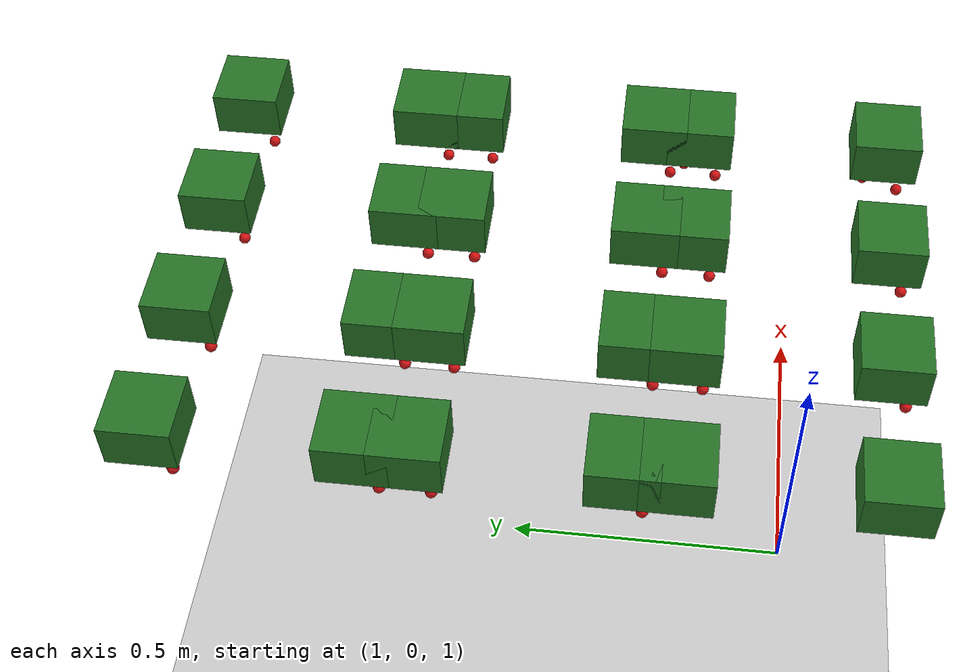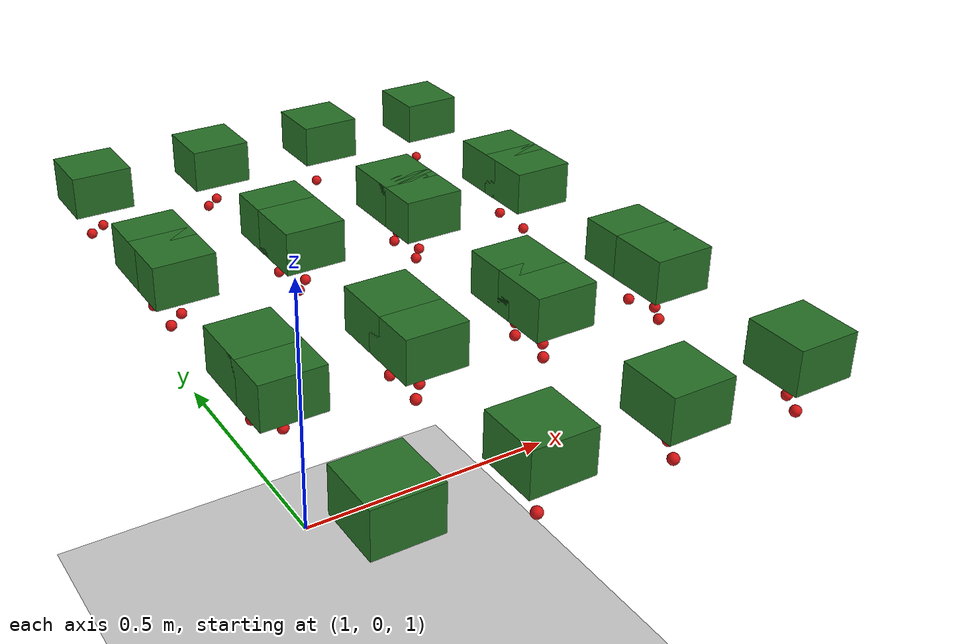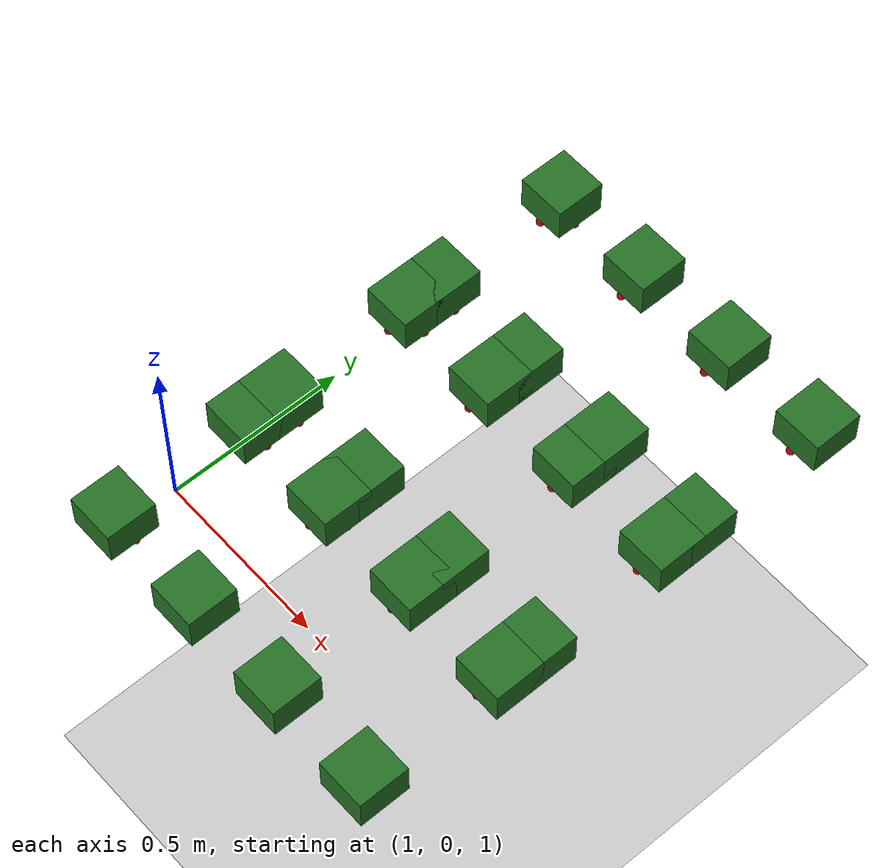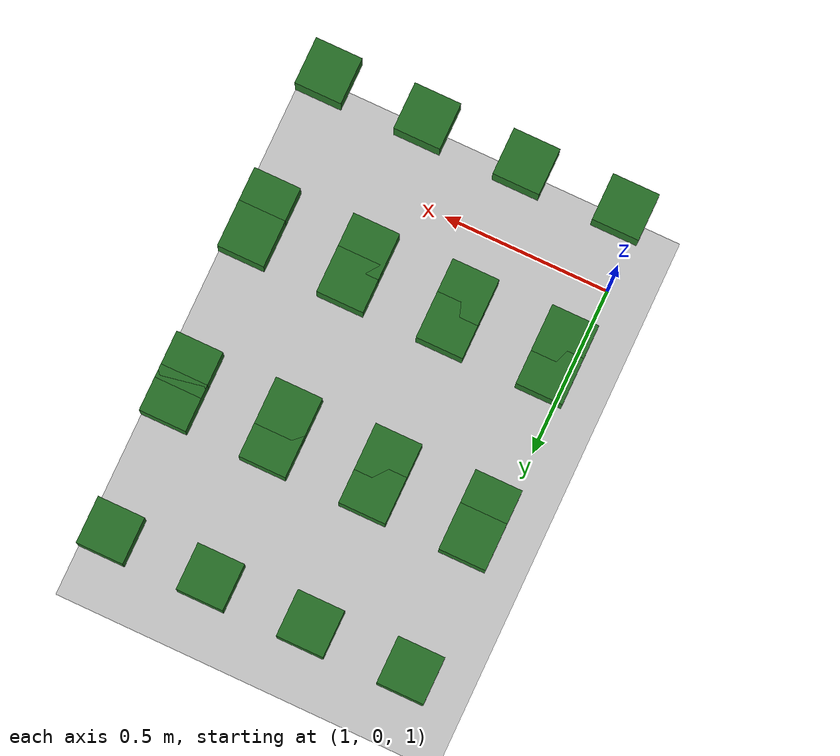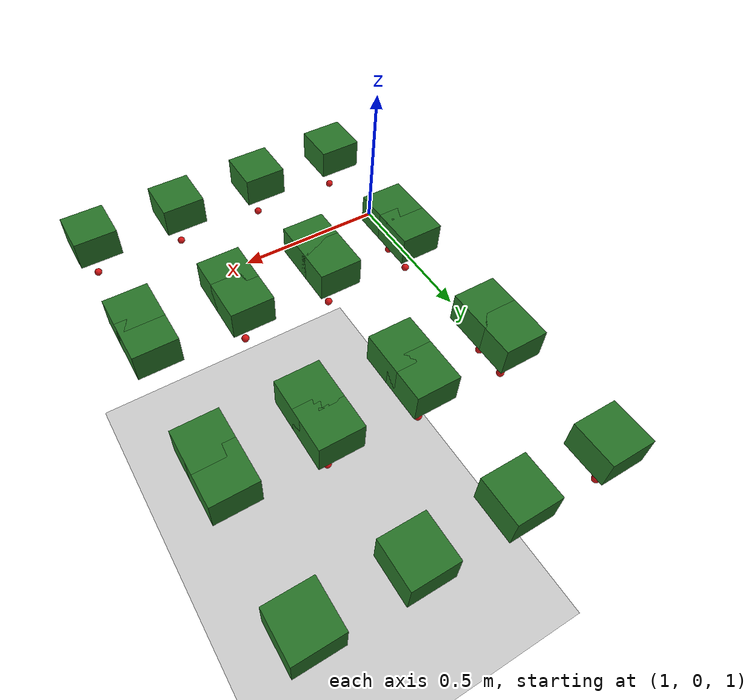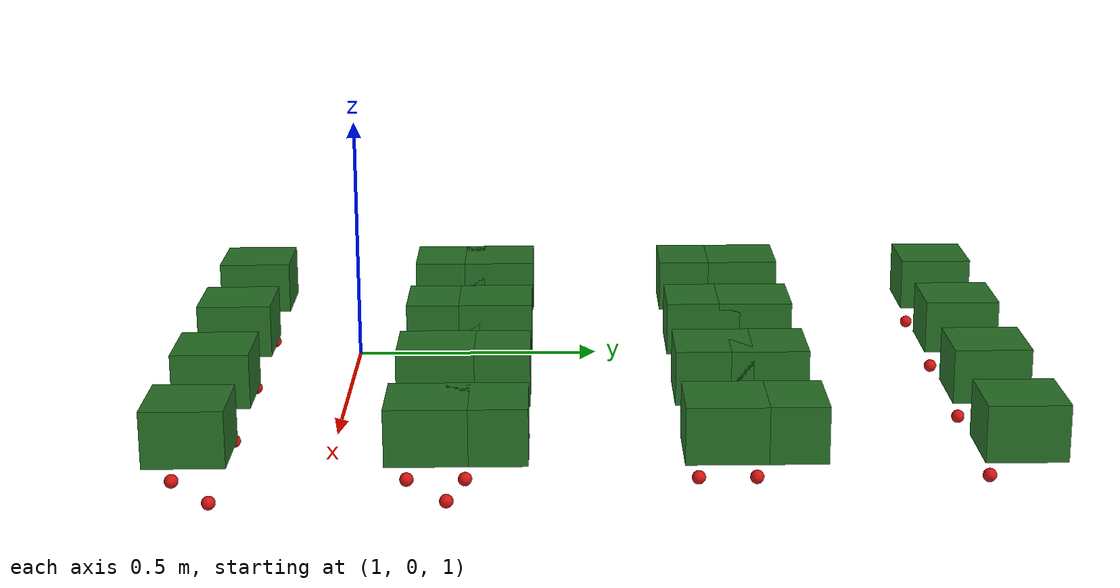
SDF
<sdf version="1.7">
 <world name="irish_polytunnel">
  <include><uri>model://sun</uri></include>
  <include><uri>model://ground_plane</uri></include>
  <model name="row0_L_plant3_foliage">
   <static>true</static>
   <pose>1.050 0.200 1.180 0 0 0</pose>
   <link name="link">
    <visual name="visual">
     <geometry><box><size>0.14 0.14 0.10</size></box></geometry>
     <material><ambient>0.10 0.35 0.10 1</ambient><diffuse>0.15 0.45 0.15 1</diffuse></material>
    </visual>
   </link>
  </model>
  <model name="row0_L_plant3_berry_1">
   <static>true</static>
   <pose>1.070 0.230 1.050 0 0 0</pose>
   <link name="link">
    <visual name="visual">
     <geometry><sphere><radius>0.012</radius></sphere></geometry>
     <material><ambient>0.75 0.05 0.05 1</ambient><diffuse>0.85 0.08 0.08 1</diffuse></material>
    </visual>
   </link>
  </model>
  <model name="row0_L_plant4_foliage">
   <static>true</static>
   <pose>1.350 0.200 1.180 0 0 0</pose>
   <link name="link">
    <visual name="visual">
     <geometry><box><size>0.14 0.14 0.10</size></box></geometry>
     <material><ambient>0.10 0.35 0.10 1</ambient><diffuse>0.15 0.45 0.15 1</diffuse></material>
    </visual>
   </link>
  </model>
  <model name="row0_L_plant4_berry_0">
   <static>true</static>
   <pose>1.320 0.160 1.070 0 0 0</pose>
   <link name="link">
    <visual name="visual">
     <geometry><sphere><radius>0.012</radius></sphere></geometry>
     <material><ambient>0.75 0.05 0.05 1</ambient><diffuse>0.85 0.08 0.08 1</diffuse></material>
    </visual>
   </link>
  </model>
  <model name="row0_L_plant4_berry_1">
   <static>true</static>
   <pose>1.370 0.230 1.050 0 0 0</pose>
   <link name="link">
    <visual name="visual">
     <geometry><sphere><radius>0.012</radius></sphere></geometry>
     <material><ambient>0.75 0.05 0.05 1</ambient><diffuse>0.85 0.08 0.08 1</diffuse></material>
    </visual>
   </link>
  </model>
  <model name="row0_L_plant5_foliage">
   <static>true</static>
   <pose>1.650 0.200 1.180 0 0 0</pose>
   <link name="link">
    <visual name="visual">
     <geometry><box><size>0.14 0.14 0.10</size></box></geometry>
     <material><ambient>0.10 0.35 0.10 1</ambient><diffuse>0.15 0.45 0.15 1</diffuse></material>
    </visual>
   </link>
  </model>
  <model name="row0_L_plant5_berry_0">
   <static>true</static>
   <pose>1.620 0.160 1.070 0 0 0</pose>
   <link name="link">
    <visual name="visual">
     <geometry><sphere><radius>0.012</radius></sphere></geometry>
     <material><ambient>0.75 0.05 0.05 1</ambient><diffuse>0.85 0.08 0.08 1</diffuse></material>
    </visual>
   </link>
  </model>
  <model name="row0_L_plant5_berry_1">
   <static>true</static>
   <pose>1.670 0.230 1.050 0 0 0</pose>
   <link name="link">
    <visual name="visual">
     <geometry><sphere><radius>0.012</radius></sphere></geometry>
     <material><ambient>0.75 0.05 0.05 1</ambient><diffuse>0.85 0.08 0.08 1</diffuse></material>
    </visual>
   </link>
  </model>
  <model name="row0_L_plant6_foliage">
   <static>true</static>
   <pose>1.950 0.200 1.180 0 0 0</pose>
   <link name="link">
    <visual name="visual">
     <geometry><box><size>0.14 0.14 0.10</size></box></geometry>
     <material><ambient>0.10 0.35 0.10 1</ambient><diffuse>0.15 0.45 0.15 1</diffuse></material>
    </visual>
   </link>
  </model>
  <model name="row0_L_plant6_berry_0">
   <static>true</static>
   <pose>1.920 0.160 1.070 0 0 0</pose>
   <link name="link">
    <visual name="visual">
     <geometry><sphere><radius>0.012</radius></sphere></geometry>
     <material><ambient>0.75 0.05 0.05 1</ambient><diffuse>0.85 0.08 0.08 1</diffuse></material>
    </visual>
   </link>
  </model>
  <model name="row0_L_plant6_berry_1">
   <static>true</static>
   <pose>1.970 0.230 1.050 0 0 0</pose>
   <link name="link">
    <visual name="visual">
     <geometry><sphere><radius>0.012</radius></sphere></geometry>
     <material><ambient>0.75 0.05 0.05 1</ambient><diffuse>0.85 0.08 0.08 1</diffuse></material>
    </visual>
   </link>
  </model>
  <model name="row0_R_plant3_foliage">
   <static>true</static>
   <pose>1.050 -0.200 1.180 0 0 0</pose>
   <link name="link">
    <visual name="visual">
     <geometry><box><size>0.14 0.14 0.10</size></box></geometry>
     <material><ambient>0.10 0.35 0.10 1</ambient><diffuse>0.15 0.45 0.15 1</diffuse></material>
    </visual>
   </link>
  </model>
  <model name="row0_R_plant3_berry_1">
   <static>true</static>
   <pose>1.070 -0.170 1.050 0 0 0</pose>
   <link name="link">
    <visual name="visual">
     <geometry><sphere><radius>0.012</radius></sphere></geometry>
     <material><ambient>0.75 0.05 0.05 1</ambient><diffuse>0.85 0.08 0.08 1</diffuse></material>
    </visual>
   </link>
  </model>
  <model name="row0_R_plant4_foliage">
   <static>true</static>
   <pose>1.350 -0.200 1.180 0 0 0</pose>
   <link name="link">
    <visual name="visual">
     <geometry><box><size>0.14 0.14 0.10</size></box></geometry>
     <material><ambient>0.10 0.35 0.10 1</ambient><diffuse>0.15 0.45 0.15 1</diffuse></material>
    </visual>
   </link>
  </model>
  <model name="row0_R_plant4_berry_0">
   <static>true</static>
   <pose>1.320 -0.240 1.070 0 0 0</pose>
   <link name="link">
    <visual name="visual">
     <geometry><sphere><radius>0.012</radius></sphere></geometry>
     <material><ambient>0.75 0.05 0.05 1</ambient><diffuse>0.85 0.08 0.08 1</diffuse></material>
    </visual>
   </link>
  </model>
  <model name="row0_R_plant4_berry_1">
   <static>true</static>
   <pose>1.370 -0.170 1.050 0 0 0</pose>
   <link name="link">
    <visual name="visual">
     <geometry><sphere><radius>0.012</radius></sphere></geometry>
     <material><ambient>0.75 0.05 0.05 1</ambient><diffuse>0.85 0.08 0.08 1</diffuse></material>
    </visual>
   </link>
  </model>
  <model name="row0_R_plant5_foliage">
   <static>true</static>
   <pose>1.650 -0.200 1.180 0 0 0</pose>
   <link name="link">
    <visual name="visual">
     <geometry><box><size>0.14 0.14 0.10</size></box></geometry>
     <material><ambient>0.10 0.35 0.10 1</ambient><diffuse>0.15 0.45 0.15 1</diffuse></material>
    </visual>
   </link>
  </model>
  <model name="row0_R_plant5_berry_0">
   <static>true</static>
   <pose>1.620 -0.240 1.070 0 0 0</pose>
   <link name="link">
    <visual name="visual">
     <geometry><sphere><radius>0.012</radius></sphere></geometry>
     <material><ambient>0.75 0.05 0.05 1</ambient><diffuse>0.85 0.08 0.08 1</diffuse></material>
    </visual>
   </link>
  </model>
  <model name="row0_R_plant5_berry_1">
   <static>true</static>
   <pose>1.670 -0.170 1.050 0 0 0</pose>
   <link name="link">
    <visual name="visual">
     <geometry><sphere><radius>0.012</radius></sphere></geometry>
     <material><ambient>0.75 0.05 0.05 1</ambient><diffuse>0.85 0.08 0.08 1</diffuse></material>
    </visual>
   </link>
  </model>
  <model name="row0_R_plant6_foliage">
   <static>true</static>
   <pose>1.950 -0.200 1.180 0 0 0</pose>
   <link name="link">
    <visual name="visual">
     <geometry><box><size>0.14 0.14 0.10</size></box></geometry>
     <material><ambient>0.10 0.35 0.10 1</ambient><diffuse>0.15 0.45 0.15 1</diffuse></material>
    </visual>
   </link>
  </model>
  <model name="row0_R_plant6_berry_0">
   <static>true</static>
   <pose>1.920 -0.240 1.070 0 0 0</pose>
   <link name="link">
    <visual name="visual">
     <geometry><sphere><radius>0.012</radius></sphere></geometry>
     <material><ambient>0.75 0.05 0.05 1</ambient><diffuse>0.85 0.08 0.08 1</diffuse></material>
    </visual>
   </link>
  </model>
  <model name="row0_R_plant6_berry_1">
   <static>true</static>
   <pose>1.970 -0.170 1.050 0 0 0</pose>
   <link name="link">
    <visual name="visual">
     <geometry><sphere><radius>0.012</radius></sphere></geometry>
     <material><ambient>0.75 0.05 0.05 1</ambient><diffuse>0.85 0.08 0.08 1</diffuse></material>
    </visual>
   </link>
  </model>
  <model name="row1_L_plant3_foliage">
   <static>true</static>
   <pose>1.050 0.700 1.180 0 0 0</pose>
   <link name="link">
    <visual name="visual">
     <geometry><box><size>0.14 0.14 0.10</size></box></geometry>
     <material><ambient>0.10 0.35 0.10 1</ambient><diffuse>0.15 0.45 0.15 1</diffuse></material>
    </visual>
   </link>
  </model>
  <model name="row1_L_plant3_berry_0">
   <static>true</static>
   <pose>1.020 0.660 1.070 0 0 0</pose>
   <link name="link">
    <visual name="visual">
     <geometry><sphere><radius>0.012</radius></sphere></geometry>
     <material><ambient>0.75 0.05 0.05 1</ambient><diffuse>0.85 0.08 0.08 1</diffuse></material>
    </visual>
   </link>
  </model>
  <model name="row1_L_plant3_berry_1">
   <static>true</static>
   <pose>1.070 0.730 1.050 0 0 0</pose>
   <link name="link">
    <visual name="visual">
     <geometry><sphere><radius>0.012</radius></sphere></geometry>
     <material><ambient>0.75 0.05 0.05 1</ambient><diffuse>0.85 0.08 0.08 1</diffuse></material>
    </visual>
   </link>
  </model>
  <model name="row1_L_plant4_foliage">
   <static>true</static>
   <pose>1.350 0.700 1.180 0 0 0</pose>
   <link name="link">
    <visual name="visual">
     <geometry><box><size>0.14 0.14 0.10</size></box></geometry>
     <material><ambient>0.10 0.35 0.10 1</ambient><diffuse>0.15 0.45 0.15 1</diffuse></material>
    </visual>
   </link>
  </model>
  <model name="row1_L_plant4_berry_0">
   <static>true</static>
   <pose>1.320 0.660 1.070 0 0 0</pose>
   <link name="link">
    <visual name="visual">
     <geometry><sphere><radius>0.012</radius></sphere></geometry>
     <material><ambient>0.75 0.05 0.05 1</ambient><diffuse>0.85 0.08 0.08 1</diffuse></material>
    </visual>
   </link>
  </model>
  <model name="row1_L_plant4_berry_1">
   <static>true</static>
   <pose>1.370 0.730 1.050 0 0 0</pose>
   <link name="link">
    <visual name="visual">
     <geometry><sphere><radius>0.012</radius></sphere></geometry>
     <material><ambient>0.75 0.05 0.05 1</ambient><diffuse>0.85 0.08 0.08 1</diffuse></material>
    </visual>
   </link>
  </model>
  <model name="row1_L_plant5_foliage">
   <static>true</static>
   <pose>1.650 0.700 1.180 0 0 0</pose>
   <link name="link">
    <visual name="visual">
     <geometry><box><size>0.14 0.14 0.10</size></box></geometry>
     <material><ambient>0.10 0.35 0.10 1</ambient><diffuse>0.15 0.45 0.15 1</diffuse></material>
    </visual>
   </link>
  </model>
  <model name="row1_L_plant5_berry_0">
   <static>true</static>
   <pose>1.620 0.660 1.070 0 0 0</pose>
   <link name="link">
    <visual name="visual">
     <geometry><sphere><radius>0.012</radius></sphere></geometry>
     <material><ambient>0.75 0.05 0.05 1</ambient><diffuse>0.85 0.08 0.08 1</diffuse></material>
    </visual>
   </link>
  </model>
  <model name="row1_L_plant5_berry_1">
   <static>true</static>
   <pose>1.670 0.730 1.050 0 0 0</pose>
   <link name="link">
    <visual name="visual">
     <geometry><sphere><radius>0.012</radius></sphere></geometry>
     <material><ambient>0.75 0.05 0.05 1</ambient><diffuse>0.85 0.08 0.08 1</diffuse></material>
    </visual>
   </link>
  </model>
  <model name="row1_L_plant6_foliage">
   <static>true</static>
   <pose>1.950 0.700 1.180 0 0 0</pose>
   <link name="link">
    <visual name="visual">
     <geometry><box><size>0.14 0.14 0.10</size></box></geometry>
     <material><ambient>0.10 0.35 0.10 1</ambient><diffuse>0.15 0.45 0.15 1</diffuse></material>
    </visual>
   </link>
  </model>
  <model name="row1_L_plant6_berry_0">
   <static>true</static>
   <pose>1.920 0.660 1.070 0 0 0</pose>
   <link name="link">
    <visual name="visual">
     <geometry><sphere><radius>0.012</radius></sphere></geometry>
     <material><ambient>0.75 0.05 0.05 1</ambient><diffuse>0.85 0.08 0.08 1</diffuse></material>
    </visual>
   </link>
  </model>
  <model name="row1_R_plant3_foliage">
   <static>true</static>
   <pose>1.050 0.300 1.180 0 0 0</pose>
   <link name="link">
    <visual name="visual">
     <geometry><box><size>0.14 0.14 0.10</size></box></geometry>
     <material><ambient>0.10 0.35 0.10 1</ambient><diffuse>0.15 0.45 0.15 1</diffuse></material>
    </visual>
   </link>
  </model>
  <model name="row1_R_plant3_berry_0">
   <static>true</static>
   <pose>1.020 0.260 1.070 0 0 0</pose>
   <link name="link">
    <visual name="visual">
     <geometry><sphere><radius>0.012</radius></sphere></geometry>
     <material><ambient>0.75 0.05 0.05 1</ambient><diffuse>0.85 0.08 0.08 1</diffuse></material>
    </visual>
   </link>
  </model>
  <model name="row1_R_plant3_berry_1">
   <static>true</static>
   <pose>1.070 0.330 1.050 0 0 0</pose>
   <link name="link">
    <visual name="visual">
     <geometry><sphere><radius>0.012</radius></sphere></geometry>
     <material><ambient>0.75 0.05 0.05 1</ambient><diffuse>0.85 0.08 0.08 1</diffuse></material>
    </visual>
   </link>
  </model>
  <model name="row1_R_plant4_foliage">
   <static>true</static>
   <pose>1.350 0.300 1.180 0 0 0</pose>
   <link name="link">
    <visual name="visual">
     <geometry><box><size>0.14 0.14 0.10</size></box></geometry>
     <material><ambient>0.10 0.35 0.10 1</ambient><diffuse>0.15 0.45 0.15 1</diffuse></material>
    </visual>
   </link>
  </model>
  <model name="row1_R_plant4_berry_0">
   <static>true</static>
   <pose>1.320 0.260 1.070 0 0 0</pose>
   <link name="link">
    <visual name="visual">
     <geometry><sphere><radius>0.012</radius></sphere></geometry>
     <material><ambient>0.75 0.05 0.05 1</ambient><diffuse>0.85 0.08 0.08 1</diffuse></material>
    </visual>
   </link>
  </model>
  <model name="row1_R_plant4_berry_1">
   <static>true</static>
   <pose>1.370 0.330 1.050 0 0 0</pose>
   <link name="link">
    <visual name="visual">
     <geometry><sphere><radius>0.012</radius></sphere></geometry>
     <material><ambient>0.75 0.05 0.05 1</ambient><diffuse>0.85 0.08 0.08 1</diffuse></material>
    </visual>
   </link>
  </model>
  <model name="row1_R_plant5_foliage">
   <static>true</static>
   <pose>1.650 0.300 1.180 0 0 0</pose>
   <link name="link">
    <visual name="visual">
     <geometry><box><size>0.14 0.14 0.10</size></box></geometry>
     <material><ambient>0.10 0.35 0.10 1</ambient><diffuse>0.15 0.45 0.15 1</diffuse></material>
    </visual>
   </link>
  </model>
  <model name="row1_R_plant5_berry_0">
   <static>true</static>
   <pose>1.620 0.260 1.070 0 0 0</pose>
   <link name="link">
    <visual name="visual">
     <geometry><sphere><radius>0.012</radius></sphere></geometry>
     <material><ambient>0.75 0.05 0.05 1</ambient><diffuse>0.85 0.08 0.08 1</diffuse></material>
    </visual>
   </link>
  </model>
  <model name="row1_R_plant5_berry_1">
   <static>true</static>
   <pose>1.670 0.330 1.050 0 0 0</pose>
   <link name="link">
    <visual name="visual">
     <geometry><sphere><radius>0.012</radius></sphere></geometry>
     <material><ambient>0.75 0.05 0.05 1</ambient><diffuse>0.85 0.08 0.08 1</diffuse></material>
    </visual>
   </link>
  </model>
  <model name="row1_R_plant6_foliage">
   <static>true</static>
   <pose>1.950 0.300 1.180 0 0 0</pose>
   <link name="link">
    <visual name="visual">
     <geometry><box><size>0.14 0.14 0.10</size></box></geometry>
     <material><ambient>0.10 0.35 0.10 1</ambient><diffuse>0.15 0.45 0.15 1</diffuse></material>
    </visual>
   </link>
  </model>
  <model name="row1_R_plant6_berry_0">
   <static>true</static>
   <pose>1.920 0.260 1.070 0 0 0</pose>
   <link name="link">
    <visual name="visual">
     <geometry><sphere><radius>0.012</radius></sphere></geometry>
     <material><ambient>0.75 0.05 0.05 1</ambient><diffuse>0.85 0.08 0.08 1</diffuse></material>
    </visual>
   </link>
  </model>
  <model name="row2_L_plant3_foliage">
   <static>true</static>
   <pose>1.050 1.200 1.180 0 0 0</pose>
   <link name="link">
    <visual name="visual">
     <geometry><box><size>0.14 0.14 0.10</size></box></geometry>
     <material><ambient>0.10 0.35 0.10 1</ambient><diffuse>0.15 0.45 0.15 1</diffuse></material>
    </visual>
   </link>
  </model>
  <model name="row2_L_plant3_berry_0">
   <static>true</static>
   <pose>1.020 1.160 1.070 0 0 0</pose>
   <link name="link">
    <visual name="visual">
     <geometry><sphere><radius>0.012</radius></sphere></geometry>
     <material><ambient>0.75 0.05 0.05 1</ambient><diffuse>0.85 0.08 0.08 1</diffuse></material>
    </visual>
   </link>
  </model>
  <model name="row2_L_plant3_berry_1">
   <static>true</static>
   <pose>1.070 1.230 1.050 0 0 0</pose>
   <link name="link">
    <visual name="visual">
     <geometry><sphere><radius>0.012</radius></sphere></geometry>
     <material><ambient>0.75 0.05 0.05 1</ambient><diffuse>0.85 0.08 0.08 1</diffuse></material>
    </visual>
   </link>
  </model>
  <model name="row2_L_plant4_foliage">
   <static>true</static>
   <pose>1.350 1.200 1.180 0 0 0</pose>
   <link name="link">
    <visual name="visual">
     <geometry><box><size>0.14 0.14 0.10</size></box></geometry>
     <material><ambient>0.10 0.35 0.10 1</ambient><diffuse>0.15 0.45 0.15 1</diffuse></material>
    </visual>
   </link>
  </model>
  <model name="row2_L_plant4_berry_0">
   <static>true</static>
   <pose>1.320 1.160 1.070 0 0 0</pose>
   <link name="link">
    <visual name="visual">
     <geometry><sphere><radius>0.012</radius></sphere></geometry>
     <material><ambient>0.75 0.05 0.05 1</ambient><diffuse>0.85 0.08 0.08 1</diffuse></material>
    </visual>
   </link>
  </model>
  <model name="row2_L_plant4_berry_1">
   <static>true</static>
   <pose>1.370 1.230 1.050 0 0 0</pose>
   <link name="link">
    <visual name="visual">
     <geometry><sphere><radius>0.012</radius></sphere></geometry>
     <material><ambient>0.75 0.05 0.05 1</ambient><diffuse>0.85 0.08 0.08 1</diffuse></material>
    </visual>
   </link>
  </model>
  <model name="row2_L_plant5_foliage">
   <static>true</static>
   <pose>1.650 1.200 1.180 0 0 0</pose>
   <link name="link">
    <visual name="visual">
     <geometry><box><size>0.14 0.14 0.10</size></box></geometry>
     <material><ambient>0.10 0.35 0.10 1</ambient><diffuse>0.15 0.45 0.15 1</diffuse></material>
    </visual>
   </link>
  </model>
  <model name="row2_L_plant5_berry_0">
   <static>true</static>
   <pose>1.620 1.160 1.070 0 0 0</pose>
   <link name="link">
    <visual name="visual">
     <geometry><sphere><radius>0.012</radius></sphere></geometry>
     <material><ambient>0.75 0.05 0.05 1</ambient><diffuse>0.85 0.08 0.08 1</diffuse></material>
    </visual>
   </link>
  </model>
  <model name="row2_L_plant6_foliage">
   <static>true</static>
   <pose>1.950 1.200 1.180 0 0 0</pose>
   <link name="link">
    <visual name="visual">
     <geometry><box><size>0.14 0.14 0.10</size></box></geometry>
     <material><ambient>0.10 0.35 0.10 1</ambient><diffuse>0.15 0.45 0.15 1</diffuse></material>
    </visual>
   </link>
  </model>
  <model name="row2_L_plant6_berry_0">
   <static>true</static>
   <pose>1.920 1.160 1.070 0 0 0</pose>
   <link name="link">
    <visual name="visual">
     <geometry><sphere><radius>0.012</radius></sphere></geometry>
     <material><ambient>0.75 0.05 0.05 1</ambient><diffuse>0.85 0.08 0.08 1</diffuse></material>
    </visual>
   </link>
  </model>
  <model name="row2_R_plant3_foliage">
   <static>true</static>
   <pose>1.050 0.800 1.180 0 0 0</pose>
   <link name="link">
    <visual name="visual">
     <geometry><box><size>0.14 0.14 0.10</size></box></geometry>
     <material><ambient>0.10 0.35 0.10 1</ambient><diffuse>0.15 0.45 0.15 1</diffuse></material>
    </visual>
   </link>
  </model>
  <model name="row2_R_plant3_berry_0">
   <static>true</static>
   <pose>1.020 0.760 1.070 0 0 0</pose>
   <link name="link">
    <visual name="visual">
     <geometry><sphere><radius>0.012</radius></sphere></geometry>
     <material><ambient>0.75 0.05 0.05 1</ambient><diffuse>0.85 0.08 0.08 1</diffuse></material>
    </visual>
   </link>
  </model>
  <model name="row2_R_plant3_berry_1">
   <static>true</static>
   <pose>1.070 0.830 1.050 0 0 0</pose>
   <link name="link">
    <visual name="visual">
     <geometry><sphere><radius>0.012</radius></sphere></geometry>
     <material><ambient>0.75 0.05 0.05 1</ambient><diffuse>0.85 0.08 0.08 1</diffuse></material>
    </visual>
   </link>
  </model>
  <model name="row2_R_plant4_foliage">
   <static>true</static>
   <pose>1.350 0.800 1.180 0 0 0</pose>
   <link name="link">
    <visual name="visual">
     <geometry><box><size>0.14 0.14 0.10</size></box></geometry>
     <material><ambient>0.10 0.35 0.10 1</ambient><diffuse>0.15 0.45 0.15 1</diffuse></material>
    </visual>
   </link>
  </model>
  <model name="row2_R_plant4_berry_0">
   <static>true</static>
   <pose>1.320 0.760 1.070 0 0 0</pose>
   <link name="link">
    <visual name="visual">
     <geometry><sphere><radius>0.012</radius></sphere></geometry>
     <material><ambient>0.75 0.05 0.05 1</ambient><diffuse>0.85 0.08 0.08 1</diffuse></material>
    </visual>
   </link>
  </model>
  <model name="row2_R_plant4_berry_1">
   <static>true</static>
   <pose>1.370 0.830 1.050 0 0 0</pose>
   <link name="link">
    <visual name="visual">
     <geometry><sphere><radius>0.012</radius></sphere></geometry>
     <material><ambient>0.75 0.05 0.05 1</ambient><diffuse>0.85 0.08 0.08 1</diffuse></material>
    </visual>
   </link>
  </model>
  <model name="row2_R_plant5_foliage">
   <static>true</static>
   <pose>1.650 0.800 1.180 0 0 0</pose>
   <link name="link">
    <visual name="visual">
     <geometry><box><size>0.14 0.14 0.10</size></box></geometry>
     <material><ambient>0.10 0.35 0.10 1</ambient><diffuse>0.15 0.45 0.15 1</diffuse></material>
    </visual>
   </link>
  </model>
  <model name="row2_R_plant5_berry_0">
   <static>true</static>
   <pose>1.620 0.760 1.070 0 0 0</pose>
   <link name="link">
    <visual name="visual">
     <geometry><sphere><radius>0.012</radius></sphere></geometry>
     <material><ambient>0.75 0.05 0.05 1</ambient><diffuse>0.85 0.08 0.08 1</diffuse></material>
    </visual>
   </link>
  </model>
  <model name="row2_R_plant5_berry_1">
   <static>true</static>
   <pose>1.670 0.830 1.050 0 0 0</pose>
   <link name="link">
    <visual name="visual">
     <geometry><sphere><radius>0.012</radius></sphere></geometry>
     <material><ambient>0.75 0.05 0.05 1</ambient><diffuse>0.85 0.08 0.08 1</diffuse></material>
    </visual>
   </link>
  </model>
  <model name="row2_R_plant6_foliage">
   <static>true</static>
   <pose>1.950 0.800 1.180 0 0 0</pose>
   <link name="link">
    <visual name="visual">
     <geometry><box><size>0.14 0.14 0.10</size></box></geometry>
     <material><ambient>0.10 0.35 0.10 1</ambient><diffuse>0.15 0.45 0.15 1</diffuse></material>
    </visual>
   </link>
  </model>
  <model name="row2_R_plant6_berry_0">
   <static>true</static>
   <pose>1.920 0.760 1.070 0 0 0</pose>
   <link name="link">
    <visual name="visual">
     <geometry><sphere><radius>0.012</radius></sphere></geometry>
     <material><ambient>0.75 0.05 0.05 1</ambient><diffuse>0.85 0.08 0.08 1</diffuse></material>
    </visual>
   </link>
  </model>
 </world>
</sdf>
